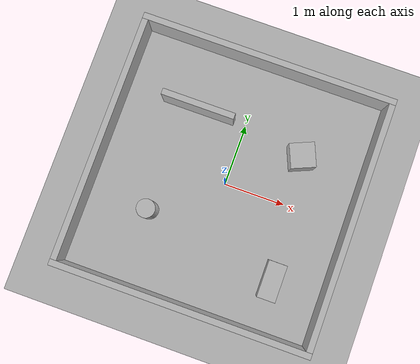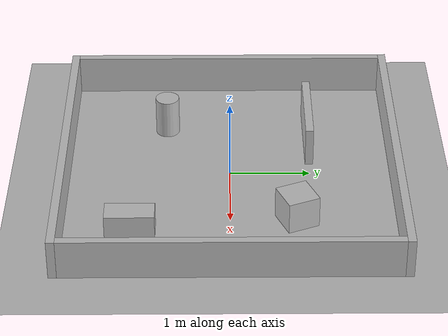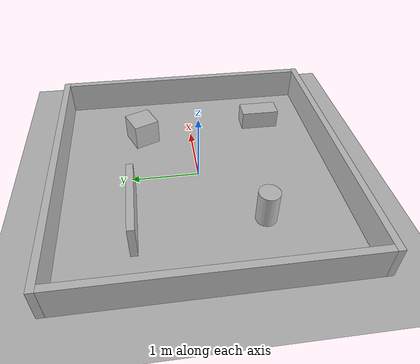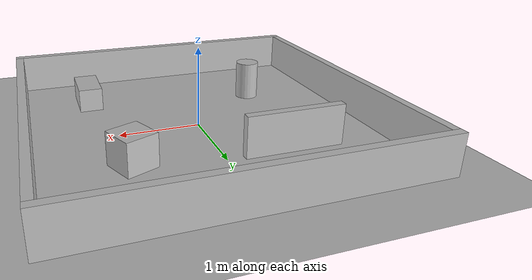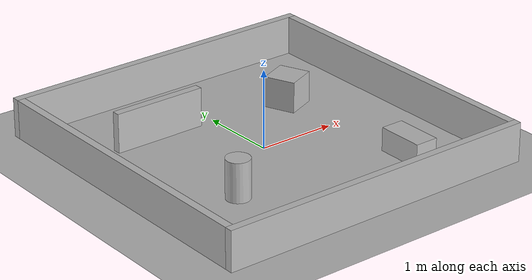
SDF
<?xml version="1.0"?>
<sdf version="1.6">
  <world name="test_room">
    <light type="directional" name="sun">
      <cast_shadows>true</cast_shadows>
      <pose>0 0 10 0 0 0</pose>
      <diffuse>0.8 0.8 0.8 1</diffuse>
      <specular>0.2 0.2 0.2 1</specular>
      <direction>-0.5 0.1 -0.9</direction>
    </light>

    <model name="ground_plane">
      <static>true</static>
      <link name="link">
        <collision name="collision">
          <geometry><plane><normal>0 0 1</normal><size>20 20</size></plane></geometry>
        </collision>
        <visual name="visual">
          <cast_shadows>false</cast_shadows>
          <geometry><plane><normal>0 0 1</normal><size>20 20</size></plane></geometry>
          <material><ambient>0.7 0.7 0.7 1</ambient><diffuse>0.7 0.7 0.7 1</diffuse></material>
        </visual>
      </link>
    </model>

    <model name="walls">
      <static>true</static>
      <link name="link">
        <collision name="north">
          <pose>0 2.05 0.25 0 0 0</pose>
          <geometry><box><size>4.2 0.1 0.5</size></box></geometry>
        </collision>
        <visual name="north">
          <pose>0 2.05 0.25 0 0 0</pose>
          <geometry><box><size>4.2 0.1 0.5</size></box></geometry>
        </visual>
        <collision name="south">
          <pose>0 -2.05 0.25 0 0 0</pose>
          <geometry><box><size>4.2 0.1 0.5</size></box></geometry>
        </collision>
        <visual name="south">
          <pose>0 -2.05 0.25 0 0 0</pose>
          <geometry><box><size>4.2 0.1 0.5</size></box></geometry>
        </visual>
        <collision name="east">
          <pose>2.05 0 0.25 0 0 0</pose>
          <geometry><box><size>0.1 4.0 0.5</size></box></geometry>
        </collision>
        <visual name="east">
          <pose>2.05 0 0.25 0 0 0</pose>
          <geometry><box><size>0.1 4.0 0.5</size></box></geometry>
        </visual>
        <collision name="west">
          <pose>-2.05 0 0.25 0 0 0</pose>
          <geometry><box><size>0.1 4.0 0.5</size></box></geometry>
        </collision>
        <visual name="west">
          <pose>-2.05 0 0.25 0 0 0</pose>
          <geometry><box><size>0.1 4.0 0.5</size></box></geometry>
        </visual>
        <!-- 방을 일부 나누는 칸막이 -->
        <collision name="partition">
          <pose>-0.8 1.0 0.25 0 0 0</pose>
          <geometry><box><size>1.2 0.1 0.5</size></box></geometry>
        </collision>
        <visual name="partition">
          <pose>-0.8 1.0 0.25 0 0 0</pose>
          <geometry><box><size>1.2 0.1 0.5</size></box></geometry>
        </visual>
      </link>
    </model>

    <model name="box_obstacle">
      <static>true</static>
      <pose>1.0 0.8 0.2 0 0 0.4</pose>
      <link name="link">
        <collision name="collision">
          <geometry><box><size>0.4 0.4 0.4</size></box></geometry>
        </collision>
        <visual name="visual">
          <geometry><box><size>0.4 0.4 0.4</size></box></geometry>
        </visual>
      </link>
    </model>

    <model name="cylinder_obstacle">
      <static>true</static>
      <pose>-1.0 -0.8 0.25 0 0 0</pose>
      <link name="link">
        <collision name="collision">
          <geometry><cylinder><radius>0.15</radius><length>0.5</length></cylinder></geometry>
        </collision>
        <visual name="visual">
          <geometry><cylinder><radius>0.15</radius><length>0.5</length></cylinder></geometry>
        </visual>
      </link>
    </model>

    <model name="small_box">
      <static>true</static>
      <pose>1.2 -1.2 0.15 0 0 0</pose>
      <link name="link">
        <collision name="collision">
          <geometry><box><size>0.3 0.6 0.3</size></box></geometry>
        </collision>
        <visual name="visual">
          <geometry><box><size>0.3 0.6 0.3</size></box></geometry>
        </visual>
      </link>
    </model>
  </world>
</sdf>
